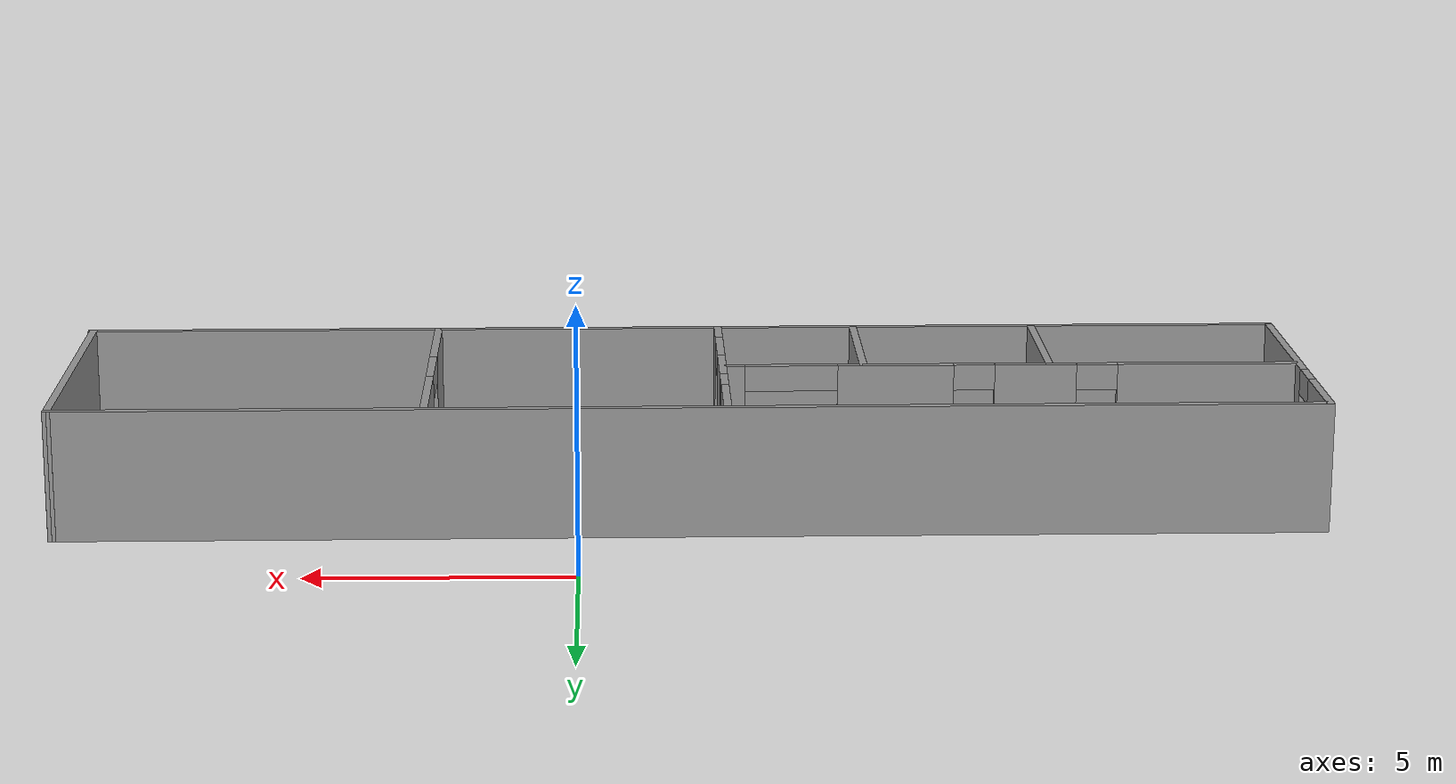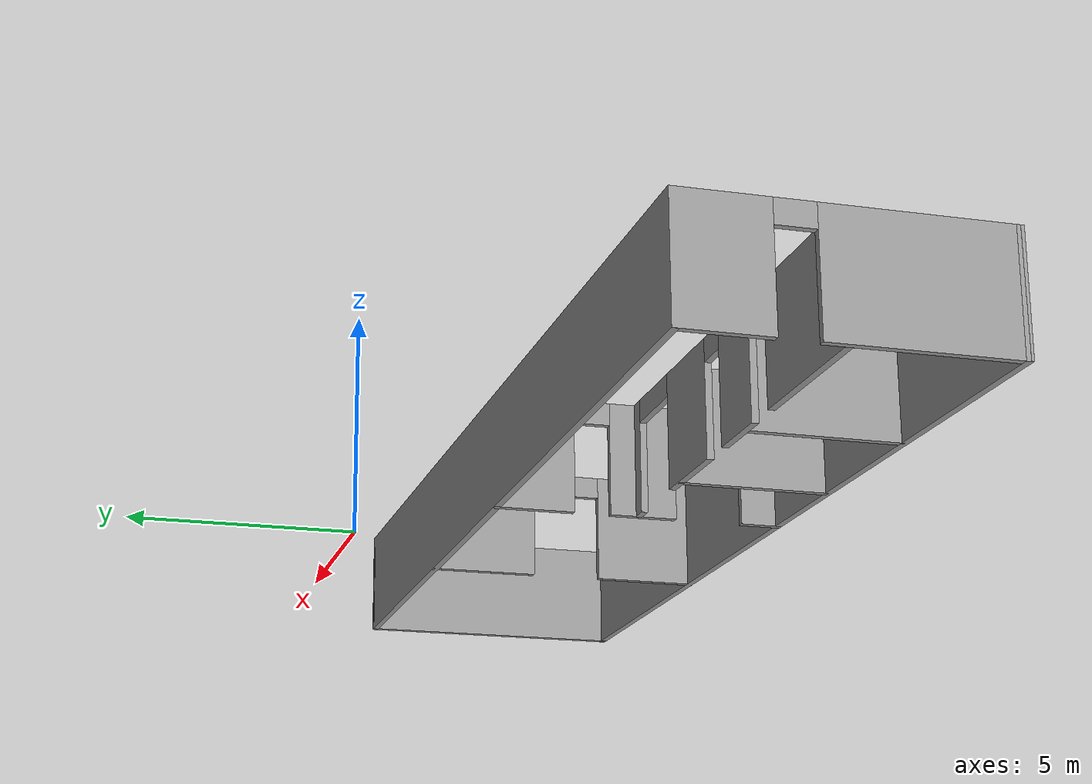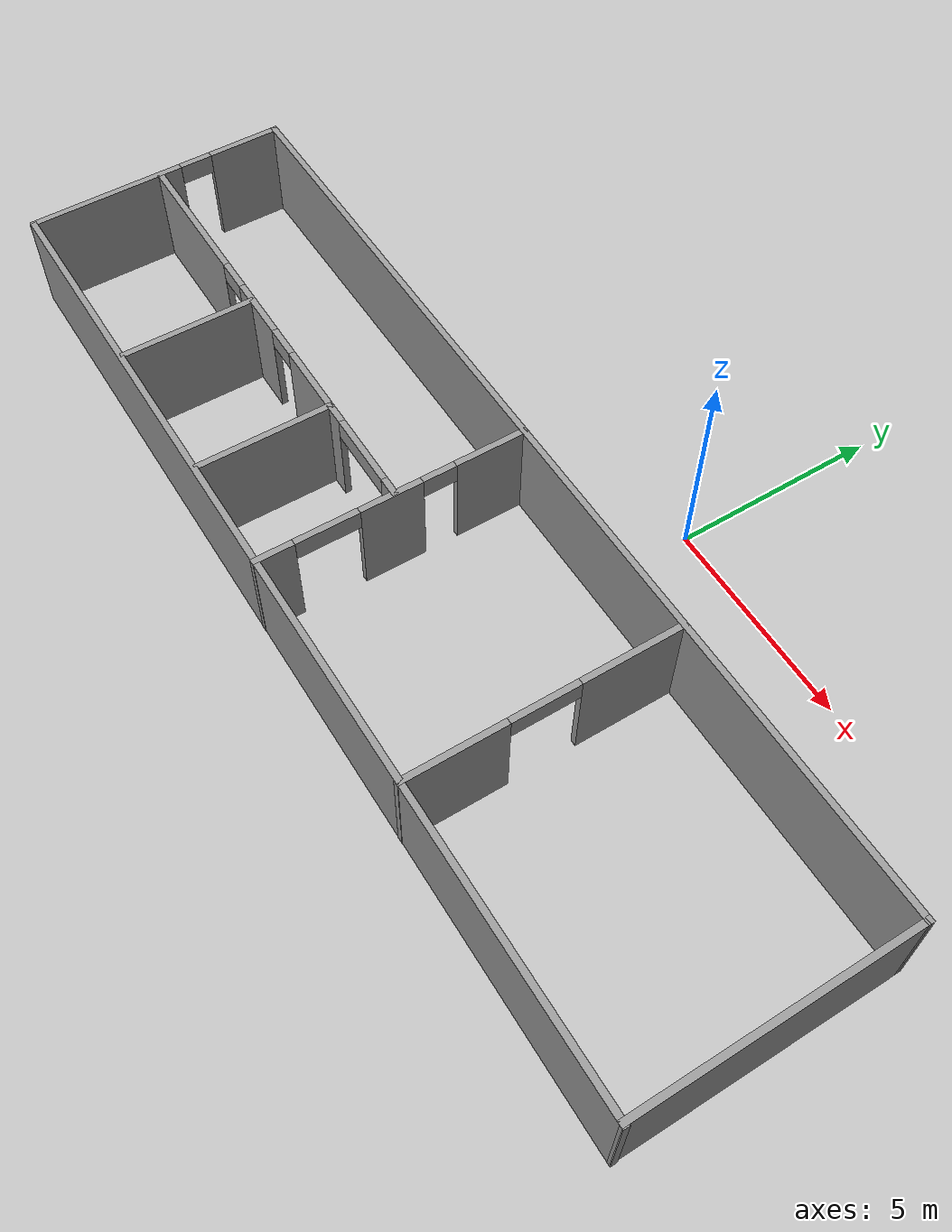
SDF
<?xml version='1.0'?>
<sdf version='1.6'>
  <model name='office_revA'>
    <pose frame=''>-2.08228 -5.69574 0 0 -0 0</pose>
<link name='Wall_22'>
      <collision name='Wall_22_Collision'>
        <geometry>
          <box>
            <size>24 0.15 2.5</size>
          </box>
        </geometry>
        <pose frame=''>0 0 1.25 0 -0 0</pose>
      </collision>
      <visual name='Wall_22_Visual'>
        <pose frame=''>0 0 1.25 0 -0 0</pose>
        <geometry>
          <box>
            <size>24 0.15 2.5</size>
          </box>
        </geometry>
        <material>
          <script>
            <uri>file://media/materials/scripts/gazebo.material</uri>
            <name>Gazebo/Grey</name>
          </script>
          <ambient>1 1 1 1</ambient>
        </material>
      </visual>
      <pose frame=''>0.012856 -3.17495 0 0 -0 0.004289</pose>
    </link>
    <link name='Wall_25'>
      <pose frame=''>-11.9249 -0.051093 0 0 -0 1.57485</pose>
      <visual name='Wall_25_Visual_0'>
        <pose frame=''>-1.324 0 1.25 0 -0 0</pose>
        <geometry>
          <box>
            <size>3.852 0.15 2.5</size>
          </box>
        </geometry>
        <material>
          <script>
            <uri>file://media/materials/scripts/gazebo.material</uri>
            <name>Gazebo/Grey</name>
          </script>
          <ambient>1 1 1 1</ambient>
        </material>
      </visual>
      <collision name='Wall_25_Collision_0'>
        <geometry>
          <box>
            <size>3.852 0.15 2.5</size>
          </box>
        </geometry>
        <pose frame=''>-1.324 0 1.25 0 -0 0</pose>
      </collision>
      <visual name='Wall_25_Visual_1'>
        <pose frame=''>2.326 0 1.25 0 -0 0</pose>
        <geometry>
          <box>
            <size>1.848 0.15 2.5</size>
          </box>
        </geometry>
        <material>
          <script>
            <uri>file://media/materials/scripts/gazebo.material</uri>
            <name>Gazebo/Grey</name>
          </script>
          <ambient>1 1 1 1</ambient>
        </material>
      </visual>
      <collision name='Wall_25_Collision_1'>
        <geometry>
          <box>
            <size>1.848 0.15 2.5</size>
          </box>
        </geometry>
        <pose frame=''>2.326 0 1.25 0 -0 0</pose>
      </collision>
      <visual name='Wall_25_Visual_2'>
        <pose frame=''>1.002 0 2.25 0 -0 0</pose>
        <geometry>
          <box>
            <size>0.8 0.15 0.5</size>
          </box>
        </geometry>
        <material>
          <script>
            <uri>file://media/materials/scripts/gazebo.material</uri>
            <name>Gazebo/Grey</name>
          </script>
          <ambient>1 1 1 1</ambient>
        </material>
      </visual>
      <collision name='Wall_25_Collision_2'>
        <geometry>
          <box>
            <size>0.8 0.15 0.5</size>
          </box>
        </geometry>
        <pose frame=''>1.002 0 2.25 0 -0 0</pose>
      </collision>
    </link>
    <link name='Wall_27'>
      <collision name='Wall_27_Collision'>
        <geometry>
          <box>
            <size>24 0.15 2.5</size>
          </box>
        </geometry>
        <pose frame=''>0 0 1.25 0 -0 0</pose>
      </collision>
      <visual name='Wall_27_Visual'>
        <pose frame=''>0 0 1.25 0 -0 0</pose>
        <geometry>
          <box>
            <size>24 0.15 2.5</size>
          </box>
        </geometry>
        <material>
          <script>
            <uri>file://media/materials/scripts/gazebo.material</uri>
            <name>Gazebo/Grey</name>
          </script>
          <ambient>1 1 1 1</ambient>
        </material>
      </visual>
      <pose frame=''>-0.012856 3.175 0 0 -0 0.004285</pose>
    </link>
    <link name='Wall_30'>
      <collision name='Wall_30_Collision'>
        <geometry>
          <box>
            <size>6.5 0.15 2.5</size>
          </box>
        </geometry>
        <pose frame=''>0 0 1.25 0 -0 0</pose>
      </collision>
      <visual name='Wall_30_Visual'>
        <pose frame=''>0 0 1.25 0 -0 0</pose>
        <geometry>
          <box>
            <size>6.5 0.15 2.5</size>
          </box>
        </geometry>
        <material>
          <script>
            <uri>file://media/materials/scripts/gazebo.material</uri>
            <name>Gazebo/Grey</name>
          </script>
          <ambient>1 1 1 1</ambient>
        </material>
      </visual>
      <pose frame=''>11.912 0.051093 0 0 0 -1.5708</pose>
    </link>
    <link name='Wall_32'>
      <pose frame=''>-6.27571 0.023082 0 0 -0 0</pose>
      <visual name='Wall_32_Visual_0'>
        <pose frame=''>-3.86424 0 1.25 0 -0 0</pose>
        <geometry>
          <box>
            <size>3.52152 0.15 2.5</size>
          </box>
        </geometry>
        <material>
          <script>
            <uri>file://media/materials/scripts/gazebo.material</uri>
            <name>Gazebo/Grey</name>
          </script>
          <ambient>1 1 1 1</ambient>
        </material>
      </visual>
      <collision name='Wall_32_Collision_0'>
        <geometry>
          <box>
            <size>3.52152 0.15 2.5</size>
          </box>
        </geometry>
        <pose frame=''>-3.86424 0 1.25 0 -0 0</pose>
      </collision>
      <visual name='Wall_32_Visual_1'>
        <pose frame=''>-0.507327 0 1.25 0 -0 0</pose>
        <geometry>
          <box>
            <size>1.5923 0.15 2.5</size>
          </box>
        </geometry>
        <material>
          <script>
            <uri>file://media/materials/scripts/gazebo.material</uri>
            <name>Gazebo/Grey</name>
          </script>
          <ambient>1 1 1 1</ambient>
        </material>
      </visual>
      <collision name='Wall_32_Collision_1'>
        <geometry>
          <box>
            <size>1.5923 0.15 2.5</size>
          </box>
        </geometry>
        <pose frame=''>-0.507327 0 1.25 0 -0 0</pose>
      </collision>
      <visual name='Wall_32_Visual_2'>
        <pose frame=''>2.21628 0 1.25 0 -0 0</pose>
        <geometry>
          <box>
            <size>2.25491 0.15 2.5</size>
          </box>
        </geometry>
        <material>
          <script>
            <uri>file://media/materials/scripts/gazebo.material</uri>
            <name>Gazebo/Grey</name>
          </script>
          <ambient>1 1 1 1</ambient>
        </material>
      </visual>
      <collision name='Wall_32_Collision_2'>
        <geometry>
          <box>
            <size>2.25491 0.15 2.5</size>
          </box>
        </geometry>
        <pose frame=''>2.21628 0 1.25 0 -0 0</pose>
      </collision>
      <visual name='Wall_32_Visual_3'>
        <pose frame=''>5.38437 0 1.25 0 -0 0</pose>
        <geometry>
          <box>
            <size>0.481265 0.15 2.5</size>
          </box>
        </geometry>
        <material>
          <script>
            <uri>file://media/materials/scripts/gazebo.material</uri>
            <name>Gazebo/Grey</name>
          </script>
          <ambient>1 1 1 1</ambient>
        </material>
      </visual>
      <collision name='Wall_32_Collision_3'>
        <geometry>
          <box>
            <size>0.481265 0.15 2.5</size>
          </box>
        </geometry>
        <pose frame=''>5.38437 0 1.25 0 -0 0</pose>
      </collision>
      <visual name='Wall_32_Visual_4'>
        <pose frame=''>-1.70348 0 2.25 0 -0 0</pose>
        <geometry>
          <box>
            <size>0.8 0.15 0.5</size>
          </box>
        </geometry>
        <material>
          <script>
            <uri>file://media/materials/scripts/gazebo.material</uri>
            <name>Gazebo/Grey</name>
          </script>
          <ambient>1 1 1 1</ambient>
        </material>
      </visual>
      <collision name='Wall_32_Collision_4'>
        <geometry>
          <box>
            <size>0.8 0.15 0.5</size>
          </box>
        </geometry>
        <pose frame=''>-1.70348 0 2.25 0 -0 0</pose>
      </collision>
      <visual name='Wall_32_Visual_5'>
        <pose frame=''>0.688822 0 2.25 0 -0 0</pose>
        <geometry>
          <box>
            <size>0.8 0.15 0.5</size>
          </box>
        </geometry>
        <material>
          <script>
            <uri>file://media/materials/scripts/gazebo.material</uri>
            <name>Gazebo/Grey</name>
          </script>
          <ambient>1 1 1 1</ambient>
        </material>
      </visual>
      <collision name='Wall_32_Collision_5'>
        <geometry>
          <box>
            <size>0.8 0.15 0.5</size>
          </box>
        </geometry>
        <pose frame=''>0.688822 0 2.25 0 -0 0</pose>
      </collision>
      <visual name='Wall_32_Visual_6'>
        <pose frame=''>4.24374 0 2.25 0 -0 0</pose>
        <geometry>
          <box>
            <size>1.8 0.15 0.5</size>
          </box>
        </geometry>
        <material>
          <script>
            <uri>file://media/materials/scripts/gazebo.material</uri>
            <name>Gazebo/Grey</name>
          </script>
          <ambient>1 1 1 1</ambient>
        </material>
      </visual>
      <collision name='Wall_32_Collision_6'>
        <geometry>
          <box>
            <size>1.8 0.15 0.5</size>
          </box>
        </geometry>
        <pose frame=''>4.24374 0 2.25 0 -0 0</pose>
      </collision>
    </link>
    <link name='Wall_34'>
      <pose frame=''>-0.693975 -0.008973 0 0 0 -1.5708</pose>
      <visual name='Wall_34_Visual_0'>
        <pose frame=''>-2.36422 0 1.25 0 -0 0</pose>
        <geometry>
          <box>
            <size>1.77156 0.15 2.5</size>
          </box>
        </geometry>
        <material>
          <script>
            <uri>file://media/materials/scripts/gazebo.material</uri>
            <name>Gazebo/Grey</name>
          </script>
          <ambient>1 1 1 1</ambient>
        </material>
      </visual>
      <collision name='Wall_34_Collision_0'>
        <geometry>
          <box>
            <size>1.77156 0.15 2.5</size>
          </box>
        </geometry>
        <pose frame=''>-2.36422 0 1.25 0 -0 0</pose>
      </collision>
      <visual name='Wall_34_Visual_1'>
        <pose frame=''>0.06521 0 1.25 0 -0 0</pose>
        <geometry>
          <box>
            <size>1.48731 0.15 2.5</size>
          </box>
        </geometry>
        <material>
          <script>
            <uri>file://media/materials/scripts/gazebo.material</uri>
            <name>Gazebo/Grey</name>
          </script>
          <ambient>1 1 1 1</ambient>
        </material>
      </visual>
      <collision name='Wall_34_Collision_1'>
        <geometry>
          <box>
            <size>1.48731 0.15 2.5</size>
          </box>
        </geometry>
        <pose frame=''>0.06521 0 1.25 0 -0 0</pose>
      </collision>
      <visual name='Wall_34_Visual_2'>
        <pose frame=''>2.77943 0 1.25 0 -0 0</pose>
        <geometry>
          <box>
            <size>0.941137 0.15 2.5</size>
          </box>
        </geometry>
        <material>
          <script>
            <uri>file://media/materials/scripts/gazebo.material</uri>
            <name>Gazebo/Grey</name>
          </script>
          <ambient>1 1 1 1</ambient>
        </material>
      </visual>
      <collision name='Wall_34_Collision_2'>
        <geometry>
          <box>
            <size>0.941137 0.15 2.5</size>
          </box>
        </geometry>
        <pose frame=''>2.77943 0 1.25 0 -0 0</pose>
      </collision>
      <visual name='Wall_34_Visual_3'>
        <pose frame=''>-1.07844 0 2.25 0 -0 0</pose>
        <geometry>
          <box>
            <size>0.8 0.15 0.5</size>
          </box>
        </geometry>
        <material>
          <script>
            <uri>file://media/materials/scripts/gazebo.material</uri>
            <name>Gazebo/Grey</name>
          </script>
          <ambient>1 1 1 1</ambient>
        </material>
      </visual>
      <collision name='Wall_34_Collision_3'>
        <geometry>
          <box>
            <size>0.8 0.15 0.5</size>
          </box>
        </geometry>
        <pose frame=''>-1.07844 0 2.25 0 -0 0</pose>
      </collision>
      <visual name='Wall_34_Visual_4'>
        <pose frame=''>1.55886 0 2.25 0 -0 0</pose>
        <geometry>
          <box>
            <size>1.5 0.15 0.5</size>
          </box>
        </geometry>
        <material>
          <script>
            <uri>file://media/materials/scripts/gazebo.material</uri>
            <name>Gazebo/Grey</name>
          </script>
          <ambient>1 1 1 1</ambient>
        </material>
      </visual>
      <collision name='Wall_34_Collision_4'>
        <geometry>
          <box>
            <size>1.5 0.15 0.5</size>
          </box>
        </geometry>
        <pose frame=''>1.55886 0 2.25 0 -0 0</pose>
      </collision>
    </link>
    <link name='Wall_36'>
      <pose frame=''>4.95143 0.013395 0 0 0 -1.5708</pose>
      <visual name='Wall_36_Visual_0'>
        <pose frame=''>-2.01205 0 1.25 0 -0 0</pose>
        <geometry>
          <box>
            <size>2.4759 0.15 2.5</size>
          </box>
        </geometry>
        <material>
          <script>
            <uri>file://media/materials/scripts/gazebo.material</uri>
            <name>Gazebo/Grey</name>
          </script>
          <ambient>1 1 1 1</ambient>
        </material>
      </visual>
      <collision name='Wall_36_Collision_0'>
        <geometry>
          <box>
            <size>2.4759 0.15 2.5</size>
          </box>
        </geometry>
        <pose frame=''>-2.01205 0 1.25 0 -0 0</pose>
      </collision>
      <visual name='Wall_36_Visual_1'>
        <pose frame=''>2.03795 0 1.25 0 -0 0</pose>
        <geometry>
          <box>
            <size>2.4241 0.15 2.5</size>
          </box>
        </geometry>
        <material>
          <script>
            <uri>file://media/materials/scripts/gazebo.material</uri>
            <name>Gazebo/Grey</name>
          </script>
          <ambient>1 1 1 1</ambient>
        </material>
      </visual>
      <collision name='Wall_36_Collision_1'>
        <geometry>
          <box>
            <size>2.4241 0.15 2.5</size>
          </box>
        </geometry>
        <pose frame=''>2.03795 0 1.25 0 -0 0</pose>
      </collision>
      <visual name='Wall_36_Visual_2'>
        <pose frame=''>0.025897 0 2.25 0 -0 0</pose>
        <geometry>
          <box>
            <size>1.6 0.15 0.5</size>
          </box>
        </geometry>
        <material>
          <script>
            <uri>file://media/materials/scripts/gazebo.material</uri>
            <name>Gazebo/Grey</name>
          </script>
          <ambient>1 1 1 1</ambient>
        </material>
      </visual>
      <collision name='Wall_36_Collision_2'>
        <geometry>
          <box>
            <size>1.6 0.15 0.5</size>
          </box>
        </geometry>
        <pose frame=''>0.025897 0 2.25 0 -0 0</pose>
      </collision>
    </link>
    <link name='Wall_40'>
      <collision name='Wall_40_Collision'>
        <geometry>
          <box>
            <size>3.25 0.15 2.5</size>
          </box>
        </geometry>
        <pose frame=''>0 0 1.25 0 -0 0</pose>
      </collision>
      <visual name='Wall_40_Visual'>
        <pose frame=''>0 0 1.25 0 -0 0</pose>
        <geometry>
          <box>
            <size>3.25 0.15 2.5</size>
          </box>
        </geometry>
        <material>
          <script>
            <uri>file://media/materials/scripts/gazebo.material</uri>
            <name>Gazebo/Grey</name>
          </script>
          <ambient>1 1 1 1</ambient>
        </material>
      </visual>
      <pose frame=''>-7.05479 -1.58115 0 0 0 -1.5708</pose>
    </link>
    <link name='Wall_42'>
      <collision name='Wall_42_Collision'>
        <geometry>
          <box>
            <size>3.25 0.15 2.5</size>
          </box>
        </geometry>
        <pose frame=''>0 0 1.25 0 -0 0</pose>
      </collision>
      <visual name='Wall_42_Visual'>
        <pose frame=''>0 0 1.25 0 -0 0</pose>
        <geometry>
          <box>
            <size>3.25 0.15 2.5</size>
          </box>
        </geometry>
        <material>
          <script>
            <uri>file://media/materials/scripts/gazebo.material</uri>
            <name>Gazebo/Grey</name>
          </script>
          <ambient>1 1 1 1</ambient>
        </material>
      </visual>
      <pose frame=''>-3.4328 -1.55879 0 0 0 -1.5708</pose>
    </link>

<static>1</static>
  </model>
</sdf>
